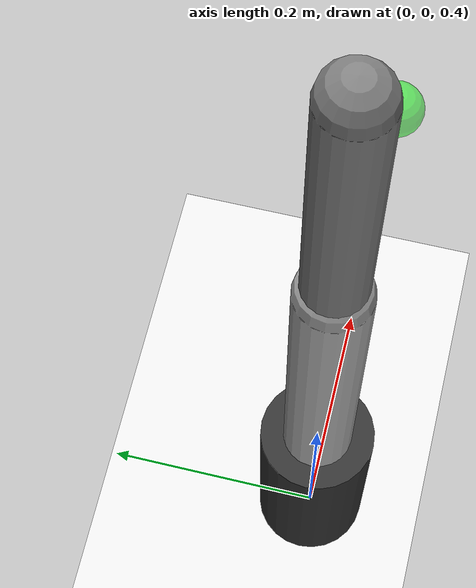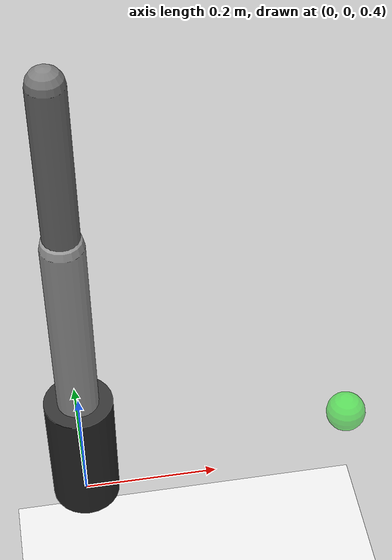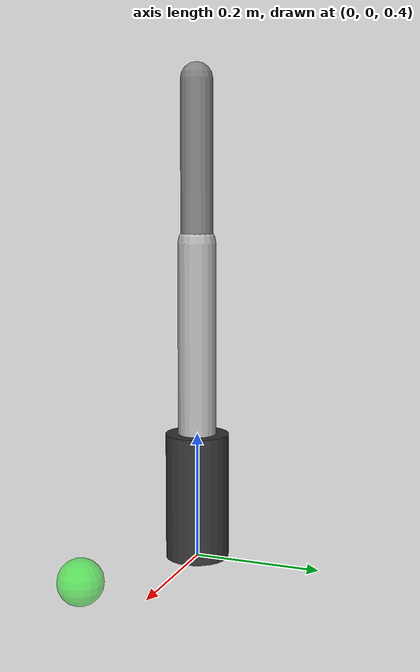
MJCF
<mujoco model="rehab_arm">
    <compiler autolimits="true" coordinate="local"/>
    <option gravity="0 0 -9.81" timestep="0.01" />

    <worldbody>
        <light diffuse=".5 .5 .5" pos="0 0 3" dir="0 0 -1"/>
        <geom type="plane" size="2 2 0.1" rgba=".9 .9 .9 1"/>

        <!-- Target Point (Mocap allows us to move it easily) -->
        <body name="target" pos="0.4 0 0.5" mocap="true">
            <geom type="sphere" size="0.03" rgba="0 1 0 0.5" contype="0" conaffinity="0"/>
        </body>

        <!-- Robotic Arm Base -->
        <body name="base" pos="0 0 0.5">
            <geom type="cylinder" size="0.05 0.1" rgba="0.2 0.2 0.2 1"/>
            <body name="upper_arm" pos="0 0 0.1">
                <joint name="shoulder" type="hinge" axis="0 1 0" range="-90 90"/>
                <geom name="upper_arm_geom" type="capsule" size="0.03" fromto="0 0 0 0 0 0.3" rgba="0.7 0.7 0.7 1"/>

                <body name="forearm" pos="0 0 0.3">
                    <joint name="elbow" type="hinge" axis="0 1 0" range="0 150"/>
                    <geom name="forearm_geom" type="capsule" size="0.025" fromto="0 0 0 0 0 0.25" rgba="0.5 0.5 0.5 1"/>
                    <site name="fingertip" pos="0 0 0.25" size="0.01"/>
                </body>
            </body>
        </body>
    </worldbody>

    <actuator>
        <!-- Motor torques -->
        <motor joint="shoulder" ctrlrange="-20 20" gear="1"/>
        <motor joint="elbow" ctrlrange="-20 20" gear="1"/>
    </actuator>
</mujoco>
